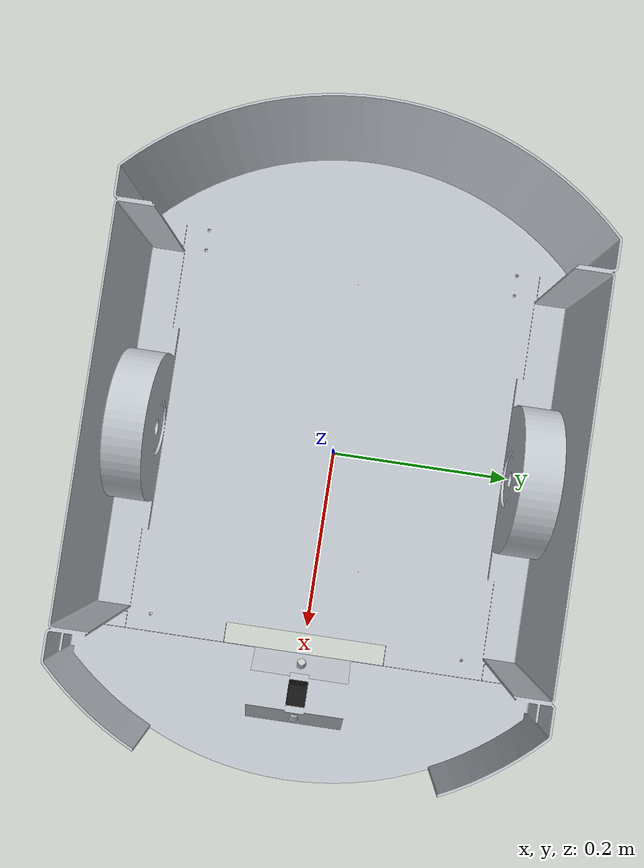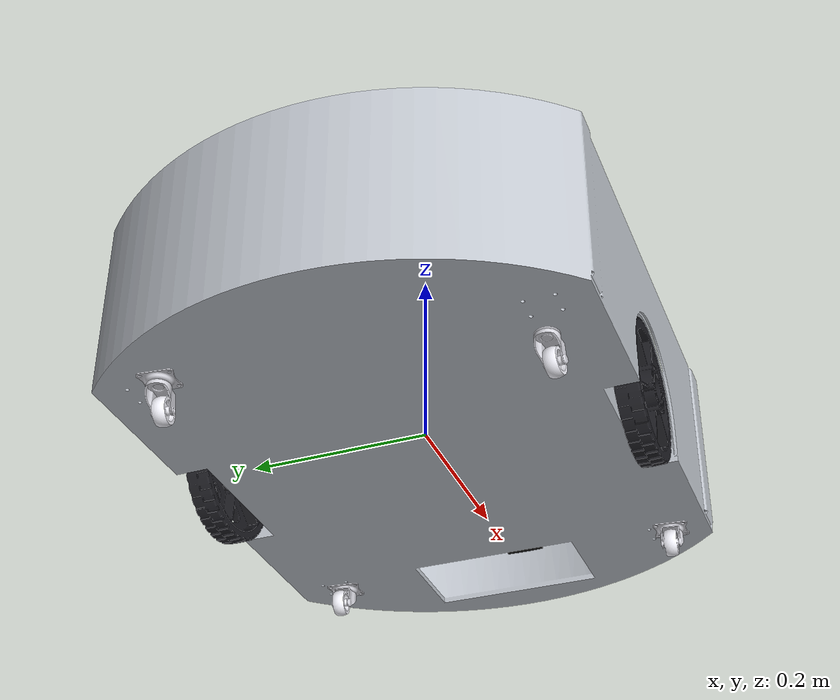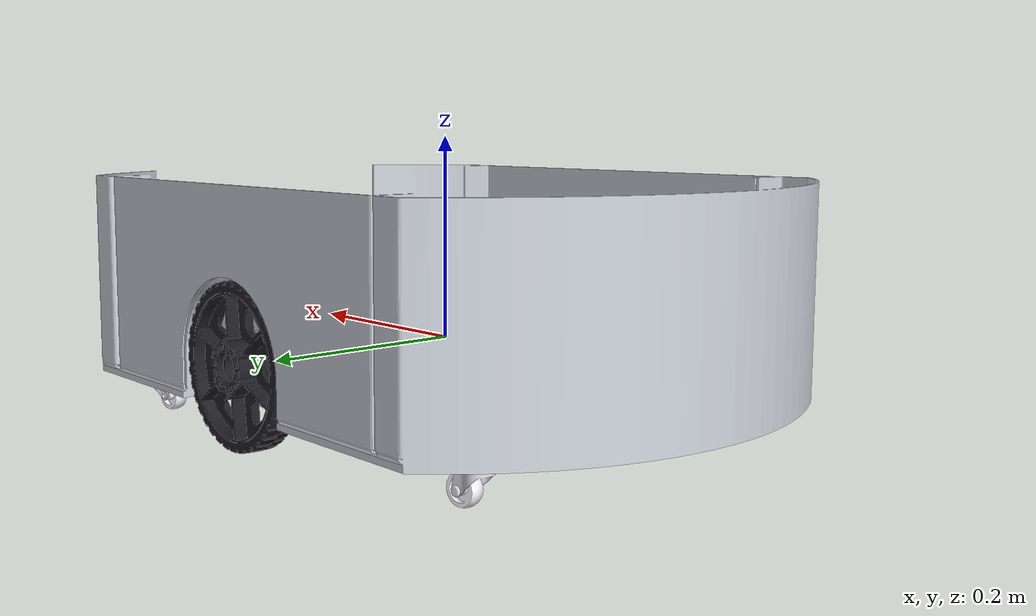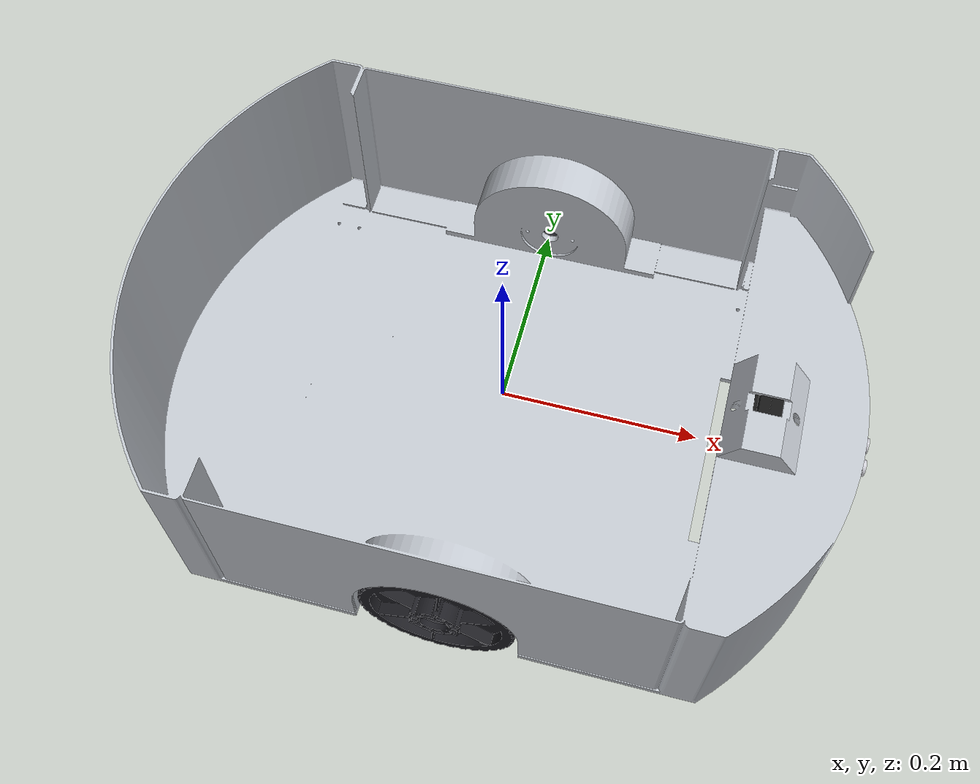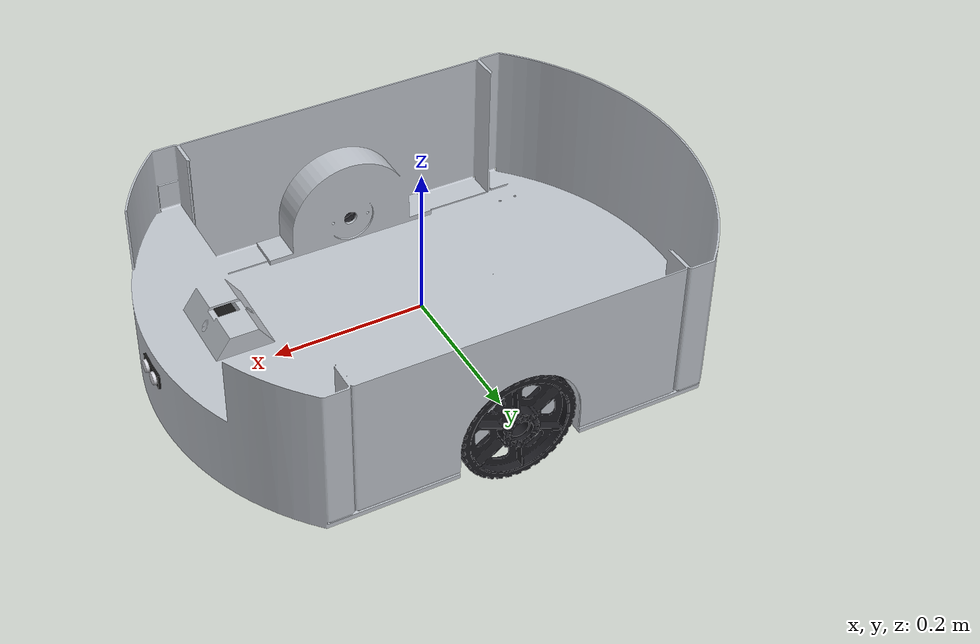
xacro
<?xml version="1.0"?>
<robot xmlns:xacro="http://www.ros.org/wiki/xacro" name="robot">

    <xacro:arg name="use_ros2_control" default="true"/>
    <xacro:arg name="sim_mode" default="false"/>

    <xacro:include filename="robot_core.xacro" />

    <xacro:if value="$(arg use_ros2_control)">
        <xacro:include filename="ros2_control.xacro" />
    </xacro:if>
    <xacro:unless value="$(arg use_ros2_control)">
        <xacro:include filename="gazebo_control.xacro" />
    </xacro:unless>

    <xacro:include filename="camera.xacro" />
    <xacro:include filename="ultrasonic.xacro" />

</robot>

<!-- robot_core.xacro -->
<robot xmlns:xacro="http://www.ros.org/wiki/xacro" >

    <xacro:include filename="inertial_macros.xacro"/>
    <xacro:include filename="robot_cad_properties.xacro"/>

    <!-- Caminho absoluto e robusto para as malhas STL (compatível com Gazebo e RViz) -->
    <xacro:property name="mesh_dir" value="file://$(find articubot_one)/meshes"/>

    <!-- MATERIAIS VISUAIS DO ROBÔ REAL                                          -->
    <material name="aluminum">
        <color rgba="0.75 0.77 0.80 1.0"/>
    </material>

    <material name="polyurethane_black">
        <color rgba="0.12 0.12 0.14 1.0"/>
    </material>

    <material name="polyurethane_white">
        <color rgba="0.95 0.95 0.98 1.0"/>
    </material>

    <material name="steel_silver">
        <color rgba="0.82 0.82 0.85 1.0"/>
    </material>

    <material name="black">
        <color rgba="0.08 0.08 0.08 1.0"/>
    </material>

    <material name="white">
        <color rgba="1.0 1.0 1.0 1.0"/>
    </material>

    <!-- BASE LINK (Centro geométrico do eixo das rodas motrizes)                -->
    <link name="base_link">
    </link>

    <!-- BASE_FOOTPRINT (Projeção no chão, z = -wheel_radius)                   -->
    <joint name="base_footprint_joint" type="fixed">
        <parent link="base_link"/>
        <child link="base_footprint"/>
        <origin xyz="0 0 -${wheel_radius}" rpy="0 0 0"/>
    </joint>

    <link name="base_footprint">
    </link>

    <!-- CHASSIS LINK (Estrutura de Alumínio e Suportes dos Rodízios)            -->
    <joint name="chassis_joint" type="fixed">
        <parent link="base_link"/>
        <child link="chassis"/>
        <origin xyz="0 0 0" rpy="0 0 0"/>
    </joint>

    <link name="chassis">
        <!-- 1. Corpo principal de Alumínio -->
        <visual>
            <origin xyz="${cad_mesh_xyz}" rpy="${cad_mesh_rpy}"/>
            <geometry>
                <mesh filename="${mesh_dir}/base_link.stl" scale="0.001 0.001 0.001"/>
            </geometry>
            <material name="aluminum"/>
        </visual>

        <!-- 2. Placas e suportes dos rodízios (Alumínio) -->
        <visual>
            <origin xyz="${cad_mesh_xyz}" rpy="${cad_mesh_rpy}"/>
            <geometry>
                <mesh filename="${mesh_dir}/FL_wheel_plate_1.stl" scale="0.001 0.001 0.001"/>
            </geometry>
            <material name="steel_silver"/>
        </visual>
        <visual>
            <origin xyz="${cad_mesh_xyz}" rpy="${cad_mesh_rpy}"/>
            <geometry>
                <mesh filename="${mesh_dir}/FL_wheel_support_1.stl" scale="0.001 0.001 0.001"/>
            </geometry>
            <material name="steel_silver"/>
        </visual>

        <visual>
            <origin xyz="${cad_mesh_xyz}" rpy="${cad_mesh_rpy}"/>
            <geometry>
                <mesh filename="${mesh_dir}/FR_wheel_plate_1.stl" scale="0.001 0.001 0.001"/>
            </geometry>
            <material name="steel_silver"/>
        </visual>
        <visual>
            <origin xyz="${cad_mesh_xyz}" rpy="${cad_mesh_rpy}"/>
            <geometry>
                <mesh filename="${mesh_dir}/FR_wheel_support_1.stl" scale="0.001 0.001 0.001"/>
            </geometry>
            <material name="steel_silver"/>
        </visual>

        <visual>
            <origin xyz="${cad_mesh_xyz}" rpy="${cad_mesh_rpy}"/>
            <geometry>
                <mesh filename="${mesh_dir}/BL_wheel_plate_1.stl" scale="0.001 0.001 0.001"/>
            </geometry>
            <material name="steel_silver"/>
        </visual>
        <visual>
            <origin xyz="${cad_mesh_xyz}" rpy="${cad_mesh_rpy}"/>
            <geometry>
                <mesh filename="${mesh_dir}/BL_wheel_support_1.stl" scale="0.001 0.001 0.001"/>
            </geometry>
            <material name="steel_silver"/>
        </visual>

        <visual>
            <origin xyz="${cad_mesh_xyz}" rpy="${cad_mesh_rpy}"/>
            <geometry>
                <mesh filename="${mesh_dir}/BR_wheel_plate_1.stl" scale="0.001 0.001 0.001"/>
            </geometry>
            <material name="steel_silver"/>
        </visual>
        <visual>
            <origin xyz="${cad_mesh_xyz}" rpy="${cad_mesh_rpy}"/>
            <geometry>
                <mesh filename="${mesh_dir}/BR_wheel_support_1.stl" scale="0.001 0.001 0.001"/>
            </geometry>
            <material name="steel_silver"/>
        </visual>

        <!-- 3. Rodas dos rodízios (Poliuretano) -->
        <visual>
            <origin xyz="${cad_mesh_xyz}" rpy="${cad_mesh_rpy}"/>
            <geometry>
                <mesh filename="${mesh_dir}/FL_wheel_1.stl" scale="0.001 0.001 0.001"/>
            </geometry>
            <material name="polyurethane_white"/>
        </visual>
        <visual>
            <origin xyz="${cad_mesh_xyz}" rpy="${cad_mesh_rpy}"/>
            <geometry>
                <mesh filename="${mesh_dir}/FR_wheel_1.stl" scale="0.001 0.001 0.001"/>
            </geometry>
            <material name="polyurethane_white"/>
        </visual>
        <visual>
            <origin xyz="${cad_mesh_xyz}" rpy="${cad_mesh_rpy}"/>
            <geometry>
                <mesh filename="${mesh_dir}/BL_wheel_1.stl" scale="0.001 0.001 0.001"/>
            </geometry>
            <material name="polyurethane_white"/>
        </visual>
        <visual>
            <origin xyz="${cad_mesh_xyz}" rpy="${cad_mesh_rpy}"/>
            <geometry>
                <mesh filename="${mesh_dir}/BR_wheel_1.stl" scale="0.001 0.001 0.001"/>
            </geometry>
            <material name="polyurethane_white"/>
        </visual>

        <!-- 4. Carcaça da Webcam frontal -->
        <visual>
            <origin xyz="${cad_mesh_xyz}" rpy="${cad_mesh_rpy}"/>
            <geometry>
                <mesh filename="${mesh_dir}/Webcam_1.stl" scale="0.001 0.001 0.001"/>
            </geometry>
            <material name="black"/>
        </visual>

        <!-- Colisão do Chassi (Caixa robusta otimizada para física contínua no Gazebo) -->
        <collision>
            <origin xyz="0 0 0.060" rpy="0 0 0"/>
            <geometry>
                <box size="0.680 0.480 0.170"/>
            </geometry>
        </collision>

        <!-- Inércia do chassi de Alumínio calculada a partir do volume real da malha -->
        <inertial>
            <origin xyz="${chassis_com}" rpy="0 0 0"/>
            <mass value="${chassis_mass}"/>
            <xacro:chassis_inertia/>
        </inertial>
    </link>

    <gazebo reference="chassis">
        <material>Gazebo/Grey</material>
        <mu1 value="0.05"/>
        <mu2 value="0.05"/>
    </gazebo>

    <!-- RODA MOTRIZ ESQUERDA (Poliuretano)                                      -->
    <joint name="left_wheel_joint" type="continuous">
        <parent link="base_link"/>
        <child link="left_wheel"/>
        <origin xyz="0 ${wheel_offset_y} 0" rpy="-${pi/2} 0 0" />
        <axis xyz="0 0 1"/>
    </joint>

    <link name="left_wheel">
        <visual>
            <origin xyz="0 0.04 -0.233888" rpy="${pi} ${pi/2} 0"/>
            <geometry>
                <mesh filename="${mesh_dir}/left_wheel1_1.stl" scale="0.001 0.001 0.001"/>
            </geometry>
            <material name="polyurethane_black"/>
        </visual>
        <!-- Esfera no ponto de contato para tracao confiavel sem travamento de quina -->
        <collision>
            <geometry>
                <sphere radius="${wheel_radius}"/>
            </geometry>
        </collision>
        <inertial>
            <origin xyz="${left_wheel_com}" rpy="0 0 0"/>
            <mass value="${left_wheel_mass}"/>
            <xacro:left_wheel_inertia/>
        </inertial>
    </link>

    <gazebo reference="left_wheel">
        <material>Gazebo/DarkGrey</material>
        <mu1 value="20.0"/>
        <mu2 value="20.0"/>
        <kp value="1000000.0"/>
        <kd value="1.0"/>
    </gazebo>

    <!-- RODA MOTRIZ DIREITA (Poliuretano)                                       -->
    <joint name="right_wheel_joint" type="continuous">
        <parent link="base_link"/>
        <child link="right_wheel"/>
        <origin xyz="0 ${-wheel_offset_y} 0" rpy="${pi/2} 0 0" />
        <axis xyz="0 0 -1"/>
    </joint>

    <link name="right_wheel">
        <visual>
            <origin xyz="0 -0.04 -0.233888" rpy="0 -${pi/2} 0"/>
            <geometry>
                <mesh filename="${mesh_dir}/right_wheel_1.stl" scale="0.001 0.001 0.001"/>
            </geometry>
            <material name="polyurethane_black"/>
        </visual>
        <!-- Esfera no ponto de contato para tracao confiavel sem travamento de quina -->
        <collision>
            <geometry>
                <sphere radius="${wheel_radius}"/>
            </geometry>
        </collision>
        <inertial>
            <origin xyz="${right_wheel_com}" rpy="0 0 0"/>
            <mass value="${right_wheel_mass}"/>
            <xacro:right_wheel_inertia/>
        </inertial>
    </link>

    <gazebo reference="right_wheel">
        <material>Gazebo/DarkGrey</material>
        <mu1 value="20.0"/>
        <mu2 value="20.0"/>
        <kp value="1000000.0"/>
        <kd value="1.0"/>
    </gazebo>

    <!-- 4 RODÍZIOS DE APOIO (FL, FR, BL, BR) - Pontos físicos de rolamento     -->
    <!-- Rodas bobas passivas com folga de 3 mm para apoio anti-tombamento      -->
    <xacro:macro name="caster_contact" params="prefix xyz radius mass *inertia_block">
        <joint name="${prefix}_caster_joint" type="fixed">
            <parent link="chassis"/>
            <child link="${prefix}_caster_wheel"/>
            <origin xyz="${xyz}" rpy="0 0 0"/>
        </joint>

        <link name="${prefix}_caster_wheel">
            <!-- Esfera de apoio boba com folga de 3 mm para deixar o peso nas rodas motrizes -->
            <collision>
                <geometry>
                    <sphere radius="${radius - 0.003}"/>
                </geometry>
            </collision>
            <inertial>
                <origin xyz="0 0 0" rpy="0 0 0"/>
                <mass value="${mass}"/>
                <xacro:insert_block name="inertia_block"/>
            </inertial>
        </link>

        <gazebo reference="${prefix}_caster_wheel">
            <material>Gazebo/White</material>
            <mu1 value="0.001"/>
            <mu2 value="0.001"/>
        </gazebo>
    </xacro:macro>

    <xacro:caster_contact prefix="FL" xyz="${caster_FL_xyz}" radius="${caster_FL_radius}" mass="${caster_FL_mass}">
        <xacro:caster_FL_inertia/>
    </xacro:caster_contact>

    <xacro:caster_contact prefix="FR" xyz="${caster_FR_xyz}" radius="${caster_FR_radius}" mass="${caster_FR_mass}">
        <xacro:caster_FR_inertia/>
    </xacro:caster_contact>

    <xacro:caster_contact prefix="BL" xyz="${caster_BL_xyz}" radius="${caster_BL_radius}" mass="${caster_BL_mass}">
        <xacro:caster_BL_inertia/>
    </xacro:caster_contact>

    <xacro:caster_contact prefix="BR" xyz="${caster_BR_xyz}" radius="${caster_BR_radius}" mass="${caster_BR_mass}">
        <xacro:caster_BR_inertia/>
    </xacro:caster_contact>

</robot>

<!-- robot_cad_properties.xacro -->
<robot xmlns:xacro="http://www.ros.org/wiki/xacro">

    <!-- Transformacao das malhas do Fusion (Y para cima, mm) para o frame base_link -->
    <xacro:property name="cad_mesh_rpy" value="1.570796 0.000000 -1.570796"/>
    <xacro:property name="cad_mesh_xyz" value="0.000000 0.000000 -0.040000"/>
    <xacro:property name="cad_mesh_x" value="0.000000"/>
    <xacro:property name="cad_mesh_y" value="0.000000"/>
    <xacro:property name="cad_mesh_z" value="-0.040000"/>

    <!-- Dimensoes principais medidas nas malhas -->
    <xacro:property name="wheel_radius" value="0.076200"/>
    <xacro:property name="wheel_thickness" value="0.034925"/>
    <xacro:property name="wheel_separation" value="0.467775"/>
    <xacro:property name="wheel_offset_y" value="0.233888"/>
    <xacro:property name="chassis_min_x" value="-0.353553"/>
    <xacro:property name="chassis_max_x" value="0.353553"/>
    <xacro:property name="chassis_half_width" value="0.252000"/>
    <xacro:property name="chassis_bottom_z" value="-0.040000"/>
    <xacro:property name="chassis_top_z" value="0.160440"/>

    <!-- Chassi (aluminio) -->
    <xacro:property name="chassis_mass" value="9.190729"/>
    <xacro:property name="chassis_com" value="0.000552 0.004338 0.005465"/>
    <xacro:macro name="chassis_inertia">
        <inertia ixx="2.951032e-01" ixy="2.187930e-05" ixz="-6.897835e-03" iyy="4.039126e-01" iyz="-4.802644e-04" izz="6.398004e-01"/>
    </xacro:macro>

    <!-- Roda motriz left (poliuretano) - centro em 0.000000 0.233888 0.000000 -->
    <xacro:property name="left_wheel_mass" value="0.217601"/>
    <xacro:property name="left_wheel_center_y" value="0.233888"/>
    <xacro:property name="left_wheel_com" value="0.000000 0.000090 0.000002"/>
    <xacro:macro name="left_wheel_inertia">
        <inertia ixx="3.967880e-04" ixy="3.558149e-10" ixz="-5.790514e-10" iyy="7.695632e-04" iyz="3.337837e-09" izz="3.967940e-04"/>
    </xacro:macro>

    <!-- Roda motriz right (poliuretano) - centro em 0.000000 -0.233888 0.000000 -->
    <xacro:property name="right_wheel_mass" value="0.220968"/>
    <xacro:property name="right_wheel_center_y" value="-0.233888"/>
    <xacro:property name="right_wheel_com" value="-0.000000 -0.000066 -0.000000"/>
    <xacro:macro name="right_wheel_inertia">
        <inertia ixx="4.042742e-04" ixy="1.571102e-11" ixz="-8.593552e-12" iyy="7.843411e-04" iyz="1.591664e-10" izz="4.042741e-04"/>
    </xacro:macro>

    <!-- Rodizio FL: placa + suporte (aluminio) + roda (poliuretano) -->
    <xacro:property name="caster_FL_xyz" value="0.214981 0.189298 -0.061214"/>
    <xacro:property name="caster_FL_dz" value="0.007006"/>
    <xacro:property name="caster_FL_radius" value="0.014986"/>
    <xacro:property name="caster_FL_mass" value="0.017721"/>
    <xacro:property name="caster_FL_com" value="0.008202 0.000861 0.009854"/>
    <xacro:macro name="caster_FL_inertia">
        <inertia ixx="3.145204e-06" ixy="-1.653730e-07" ixz="-1.348712e-06" iyy="4.326197e-06" iyz="-1.934956e-07" izz="2.999995e-06"/>
    </xacro:macro>

    <!-- Rodizio FR: placa + suporte (aluminio) + roda (poliuretano) -->
    <xacro:property name="caster_FR_xyz" value="0.204372 -0.210966 -0.061214"/>
    <xacro:property name="caster_FR_dz" value="0.006648"/>
    <xacro:property name="caster_FR_radius" value="0.014986"/>
    <xacro:property name="caster_FR_mass" value="0.017721"/>
    <xacro:property name="caster_FR_com" value="0.007114 0.000727 0.009854"/>
    <xacro:macro name="caster_FR_inertia">
        <inertia ixx="3.142793e-06" ixy="-1.439201e-07" ixz="-1.226741e-06" iyy="4.136621e-06" iyz="-1.785283e-07" izz="2.808009e-06"/>
    </xacro:macro>

    <!-- Rodizio BL: placa + suporte (aluminio) + roda (poliuretano) -->
    <xacro:property name="caster_BL_xyz" value="-0.233855 0.177328 -0.061214"/>
    <xacro:property name="caster_BL_dz" value="0.007240"/>
    <xacro:property name="caster_BL_radius" value="0.014986"/>
    <xacro:property name="caster_BL_mass" value="0.017721"/>
    <xacro:property name="caster_BL_com" value="-0.007124 -0.000646 0.010173"/>
    <xacro:macro name="caster_BL_inertia">
        <inertia ixx="3.286367e-06" ixy="-1.374570e-07" ixz="1.274530e-06" iyy="4.282995e-06" iyz="1.757855e-07" izz="2.808288e-06"/>
    </xacro:macro>

    <!-- Rodizio BR: placa + suporte (aluminio) + roda (poliuretano) -->
    <xacro:property name="caster_BR_xyz" value="-0.170915 -0.191749 -0.061214"/>
    <xacro:property name="caster_BR_dz" value="0.000138"/>
    <xacro:property name="caster_BR_radius" value="0.014986"/>
    <xacro:property name="caster_BR_mass" value="0.017721"/>
    <xacro:property name="caster_BR_com" value="-0.007134 0.000556 0.009854"/>
    <xacro:macro name="caster_BR_inertia">
        <inertia ixx="3.140297e-06" ixy="1.301703e-07" ixz="1.229004e-06" iyy="4.139896e-06" iyz="-1.593092e-07" izz="2.808786e-06"/>
    </xacro:macro>

    <!-- Webcam (ABS) - lente = centro da face inferior (olha para o piso) -->
    <xacro:property name="webcam_lens_xyz" value="0.255703 0.000397 0.070440"/>
    <xacro:property name="webcam_lens_x" value="0.255703"/>
    <xacro:property name="webcam_lens_z" value="0.070440"/>
    <xacro:property name="webcam_mass" value="0.049364"/>
    <xacro:property name="webcam_com" value="0.000966 -0.000000 0.012465"/>
    <xacro:macro name="webcam_inertia">
        <inertia ixx="3.460120e-05" ixy="-4.535747e-11" ixz="-8.850650e-08" iyy="4.609242e-06" iyz="7.283577e-14" izz="3.543664e-05"/>
    </xacro:macro>

</robot>

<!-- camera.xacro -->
<robot xmlns:xacro="http://www.ros.org/wiki/xacro" >

    <joint name="camera_joint" type="fixed">
        <parent link="chassis"/>
        <child link="camera_link"/>
        <origin xyz="${webcam_lens_x} 0.0 ${webcam_lens_z}" rpy="0 ${pi/2} 0"/>
    </joint>

    <link name="camera_link">
        <collision>
            <geometry>
                <box size="0.020 0.080 0.020"/>
            </geometry>
        </collision>
        <xacro:inertial_box mass="${webcam_mass}" x="0.020" y="0.080" z="0.020">
            <origin xyz="0 0 0" rpy="0 0 0"/>
        </xacro:inertial_box>
    </link>

    <joint name="camera_optical_joint" type="fixed">
        <parent link="camera_link"/>
        <child link="camera_link_optical"/>
        <origin xyz="0 0 0" rpy="${-pi/2} 0 ${-pi/2}"/>
    </joint>

    <link name="camera_link_optical"></link>

    <gazebo reference="camera_link">
        <material>Gazebo/Black</material>

        <sensor name="camera" type="camera">
            <pose> 0 0 0 0 0 0 </pose>
            <visualize>false</visualize>
            <update_rate>30</update_rate>
            <camera>
                <horizontal_fov>1.35</horizontal_fov>
                <image>
                    <format>R8G8B8</format>
                    <width>640</width>
                    <height>480</height>
                </image>
                <clip>
                    <near>0.02</near>
                    <far>8.0</far>
                </clip>
            </camera>
            <plugin name="camera_controller" filename="libgazebo_ros_camera.so">
                <frame_name>camera_link_optical</frame_name>
            </plugin>
        </sensor>
    </gazebo>

</robot>

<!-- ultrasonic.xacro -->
<robot xmlns:xacro="http://www.ros.org/wiki/xacro" >

    <joint name="ultrasonic_joint" type="fixed">
        <parent link="chassis"/>
        <child link="ultrasonic_frame"/>
        <origin xyz="0.355 0 0.040" rpy="0 0 0"/>
    </joint>

    <link name="ultrasonic_frame">
        <visual>
            <origin xyz="-0.005 0 0" rpy="0 0 0"/>
            <geometry>
                <box size="0.012 0.045 0.020"/>
            </geometry>
            <material name="black"/>
        </visual>
        <!-- Transdutor esquerdo -->
        <visual>
            <origin xyz="0.002 0.012 0" rpy="0 ${pi/2} 0"/>
            <geometry>
                <cylinder radius="0.008" length="0.006"/>
            </geometry>
            <material name="steel_silver"/>
        </visual>
        <!-- Transdutor direito -->
        <visual>
            <origin xyz="0.002 -0.012 0" rpy="0 ${pi/2} 0"/>
            <geometry>
                <cylinder radius="0.008" length="0.006"/>
            </geometry>
            <material name="steel_silver"/>
        </visual>
        <collision>
            <origin xyz="0 0 0" rpy="0 0 0"/>
            <geometry>
                <box size="0.015 0.045 0.020"/>
            </geometry>
        </collision>
        <xacro:inertial_box mass="0.015" x="0.015" y="0.045" z="0.020">
            <origin xyz="0 0 0" rpy="0 0 0"/>
        </xacro:inertial_box>
    </link>

    <gazebo reference="ultrasonic_frame">
        <material>Gazebo/Black</material>

        <sensor name="ultrasonic_sensor" type="ray">
            <pose> 0 0 0 0 0 0 </pose>
            <visualize>false</visualize>
            <update_rate>20</update_rate>
            <ray>
                <scan>
                    <horizontal>
                        <samples>5</samples>
                        <resolution>1</resolution>
                        <min_angle>-0.15</min_angle>
                        <max_angle>0.15</max_angle>
                    </horizontal>
                    <vertical>
                        <samples>5</samples>
                        <resolution>1</resolution>
                        <min_angle>-0.05</min_angle>
                        <max_angle>0.05</max_angle>
                    </vertical>
                </scan>
                <range>
                    <min>0.03</min>
                    <max>3.0</max>
                    <resolution>0.01</resolution>
                </range>
            </ray>
            <plugin name="ultrasonic_controller" filename="libgazebo_ros_ray_sensor.so">
                <ros>
                    <argument>~/out:=/agv/ultrasonic</argument>
                </ros>
                <output_type>sensor_msgs/Range</output_type>
                <radiation_type>ultrasound</radiation_type>
                <frame_name>ultrasonic_frame</frame_name>
            </plugin>
        </sensor>
    </gazebo>

</robot>
